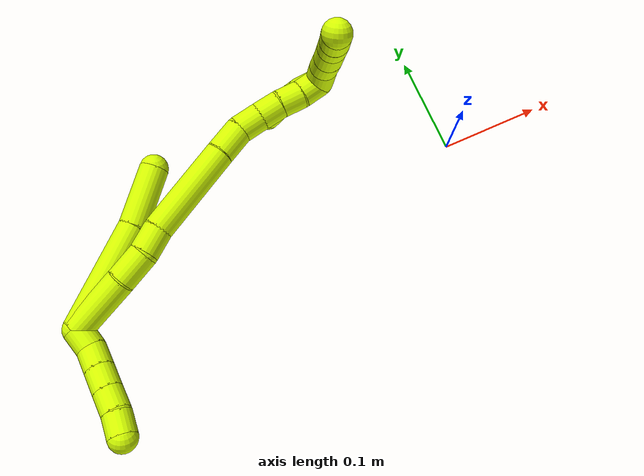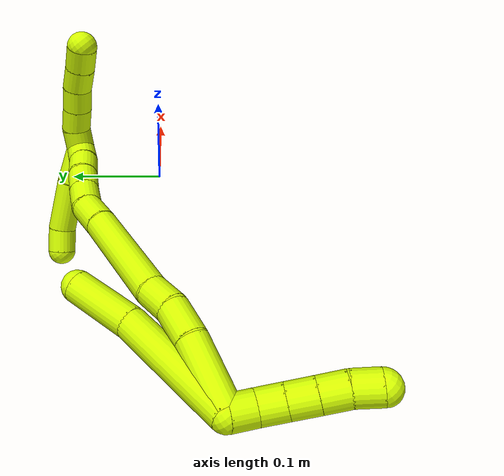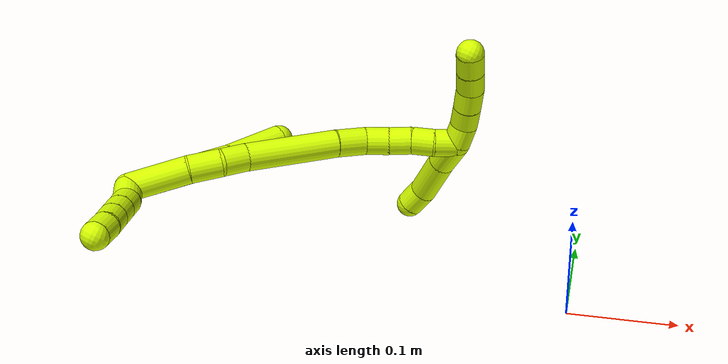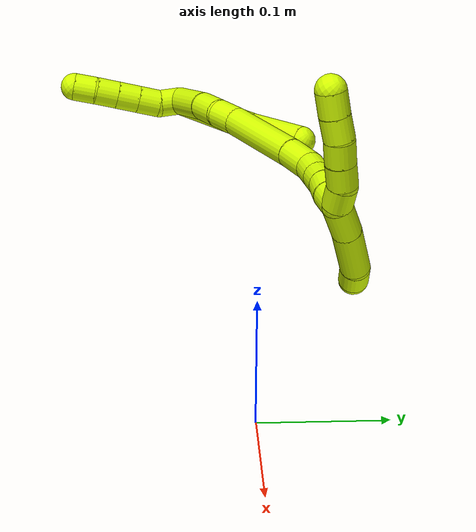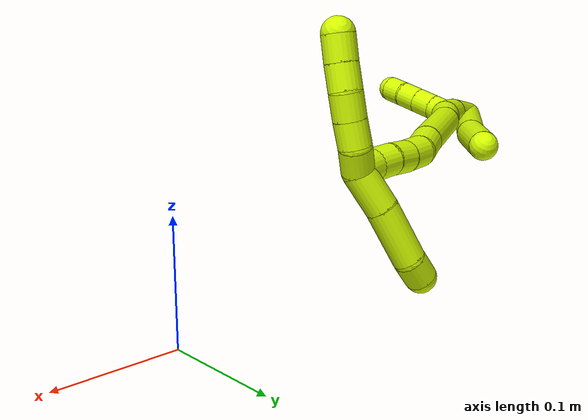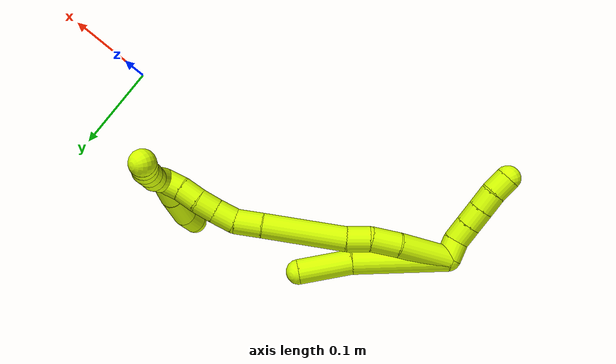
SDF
<sdf version="1.7">
 <world name="default">
  <model name="15">
   <static>0</static>
   <link name="15">
    <collision name="collision-cylinder-e_1_2_8">
     <pose>0.029057 0.022758 0.030909 -0.634671 0.647981 -0.219705</pose>
     <geometry><cylinder><radius>0.0125</radius><length>0.096283</length></cylinder></geometry>
     <surface>
      <friction><ode><mu>1.16</mu><mu2>1.16</mu2><slip1>0</slip1><slip2>0</slip2></ode></friction>
      <contact><ode><kp>1e+06</kp><kd>1</kd><max_vel>0</max_vel><min_depth>0.001</min_depth></ode></contact>
     </surface>
    </collision>
    <visual name="visual-cylinder-e_1_2_8">
     <pose>0.029057 0.022758 0.030909 -0.634671 0.647981 -0.219705</pose>
     <geometry><cylinder><radius>0.0125</radius><length>0.096283</length></cylinder></geometry>
     <material><ambient>0.835294 1 0 1</ambient></material>
    </visual>
    <collision name="collision-cylinder-e_2_8_6">
     <pose>0.071121 0.060581 0.079853 -0.695906 0.505529 -0.186823</pose>
     <geometry><cylinder><radius>0.0125</radius><length>0.053717</length></cylinder></geometry>
     <surface>
      <friction><ode><mu>1.16</mu><mu2>1.16</mu2><slip1>0</slip1><slip2>0</slip2></ode></friction>
      <contact><ode><kp>1e+06</kp><kd>1</kd><max_vel>0</max_vel><min_depth>0.001</min_depth></ode></contact>
     </surface>
    </collision>
    <visual name="visual-cylinder-e_2_8_6">
     <pose>0.071121 0.060581 0.079853 -0.695906 0.505529 -0.186823</pose>
     <geometry><cylinder><radius>0.0125</radius><length>0.053717</length></cylinder></geometry>
     <material><ambient>0.835294 1 0 1</ambient></material>
    </visual>
    <collision name="collision-cylinder-e_1_2_9">
     <pose>0.004084 -0.007409 -0.005332 2.19462 0.420654 0.789583</pose>
     <geometry><cylinder><radius>0.0125</radius><length>0.02</length></cylinder></geometry>
     <surface>
      <friction><ode><mu>1.16</mu><mu2>1.16</mu2><slip1>0</slip1><slip2>0</slip2></ode></friction>
      <contact><ode><kp>1e+06</kp><kd>1</kd><max_vel>0</max_vel><min_depth>0.001</min_depth></ode></contact>
     </surface>
    </collision>
    <visual name="visual-cylinder-e_1_2_9">
     <pose>0.004084 -0.007409 -0.005332 2.19462 0.420654 0.789583</pose>
     <geometry><cylinder><radius>0.0125</radius><length>0.02</length></cylinder></geometry>
     <material><ambient>0.835294 1 0 1</ambient></material>
    </visual>
    <collision name="collision-cylinder-e_2_9_10">
     <pose>0.009656 -0.023919 -0.01453 1.97244 0.149481 0.225358</pose>
     <geometry><cylinder><radius>0.0125</radius><length>0.02</length></cylinder></geometry>
     <surface>
      <friction><ode><mu>1.16</mu><mu2>1.16</mu2><slip1>0</slip1><slip2>0</slip2></ode></friction>
      <contact><ode><kp>1e+06</kp><kd>1</kd><max_vel>0</max_vel><min_depth>0.001</min_depth></ode></contact>
     </surface>
    </collision>
    <visual name="visual-cylinder-e_2_9_10">
     <pose>0.009656 -0.023919 -0.01453 1.97244 0.149481 0.225358</pose>
     <geometry><cylinder><radius>0.0125</radius><length>0.02</length></cylinder></geometry>
     <material><ambient>0.835294 1 0 1</ambient></material>
    </visual>
    <collision name="collision-cylinder-e_3_10_11">
     <pose>0.012642 -0.042112 -0.022282 1.97479 0.150226 0.22705</pose>
     <geometry><cylinder><radius>0.0125</radius><length>0.02</length></cylinder></geometry>
     <surface>
      <friction><ode><mu>1.16</mu><mu2>1.16</mu2><slip1>0</slip1><slip2>0</slip2></ode></friction>
      <contact><ode><kp>1e+06</kp><kd>1</kd><max_vel>0</max_vel><min_depth>0.001</min_depth></ode></contact>
     </surface>
    </collision>
    <visual name="visual-cylinder-e_3_10_11">
     <pose>0.012642 -0.042112 -0.022282 1.97479 0.150226 0.22705</pose>
     <geometry><cylinder><radius>0.0125</radius><length>0.02</length></cylinder></geometry>
     <material><ambient>0.835294 1 0 1</ambient></material>
    </visual>
    <collision name="collision-cylinder-e_4_11_12">
     <pose>0.015707 -0.060299 -0.030019 1.97119 0.15751 0.237082</pose>
     <geometry><cylinder><radius>0.0125</radius><length>0.02</length></cylinder></geometry>
     <surface>
      <friction><ode><mu>1.16</mu><mu2>1.16</mu2><slip1>0</slip1><slip2>0</slip2></ode></friction>
      <contact><ode><kp>1e+06</kp><kd>1</kd><max_vel>0</max_vel><min_depth>0.001</min_depth></ode></contact>
     </surface>
    </collision>
    <visual name="visual-cylinder-e_4_11_12">
     <pose>0.015707 -0.060299 -0.030019 1.97119 0.15751 0.237082</pose>
     <geometry><cylinder><radius>0.0125</radius><length>0.02</length></cylinder></geometry>
     <material><ambient>0.835294 1 0 1</ambient></material>
    </visual>
    <collision name="collision-cylinder-e_5_12_5">
     <pose>0.017765 -0.078118 -0.038731 2.07931 0.04895 0.083294</pose>
     <geometry><cylinder><radius>0.0125</radius><length>0.02</length></cylinder></geometry>
     <surface>
      <friction><ode><mu>1.16</mu><mu2>1.16</mu2><slip1>0</slip1><slip2>0</slip2></ode></friction>
      <contact><ode><kp>1e+06</kp><kd>1</kd><max_vel>0</max_vel><min_depth>0.001</min_depth></ode></contact>
     </surface>
    </collision>
    <visual name="visual-cylinder-e_5_12_5">
     <pose>0.017765 -0.078118 -0.038731 2.07931 0.04895 0.083294</pose>
     <geometry><cylinder><radius>0.0125</radius><length>0.02</length></cylinder></geometry>
     <material><ambient>0.835294 1 0 1</ambient></material>
    </visual>
    <collision name="collision-cylinder-e_1_2_13">
     <pose>0.019545 0.003297 0.018421 -0.177103 0.807101 -0.075782</pose>
     <geometry><cylinder><radius>0.0125</radius><length>0.054119</length></cylinder></geometry>
     <surface>
      <friction><ode><mu>1.16</mu><mu2>1.16</mu2><slip1>0</slip1><slip2>0</slip2></ode></friction>
      <contact><ode><kp>1e+06</kp><kd>1</kd><max_vel>0</max_vel><min_depth>0.001</min_depth></ode></contact>
     </surface>
    </collision>
    <visual name="visual-cylinder-e_1_2_13">
     <pose>0.019545 0.003297 0.018421 -0.177103 0.807101 -0.075782</pose>
     <geometry><cylinder><radius>0.0125</radius><length>0.054119</length></cylinder></geometry>
     <material><ambient>0.835294 1 0 1</ambient></material>
    </visual>
    <collision name="collision-cylinder-e_2_13_14">
     <pose>0.049733 0.010213 0.045702 -0.387808 0.83847 -0.174583</pose>
     <geometry><cylinder><radius>0.0125</radius><length>0.028628</length></cylinder></geometry>
     <surface>
      <friction><ode><mu>1.16</mu><mu2>1.16</mu2><slip1>0</slip1><slip2>0</slip2></ode></friction>
      <contact><ode><kp>1e+06</kp><kd>1</kd><max_vel>0</max_vel><min_depth>0.001</min_depth></ode></contact>
     </surface>
    </collision>
    <visual name="visual-cylinder-e_2_13_14">
     <pose>0.049733 0.010213 0.045702 -0.387808 0.83847 -0.174583</pose>
     <geometry><cylinder><radius>0.0125</radius><length>0.028628</length></cylinder></geometry>
     <material><ambient>0.835294 1 0 1</ambient></material>
    </visual>
    <collision name="collision-cylinder-e_3_14_15">
     <pose>0.06788 0.019645 0.061521 -0.695834 0.691253 -0.259711</pose>
     <geometry><cylinder><radius>0.0125</radius><length>0.023538</length></cylinder></geometry>
     <surface>
      <friction><ode><mu>1.16</mu><mu2>1.16</mu2><slip1>0</slip1><slip2>0</slip2></ode></friction>
      <contact><ode><kp>1e+06</kp><kd>1</kd><max_vel>0</max_vel><min_depth>0.001</min_depth></ode></contact>
     </surface>
    </collision>
    <visual name="visual-cylinder-e_3_14_15">
     <pose>0.06788 0.019645 0.061521 -0.695834 0.691253 -0.259711</pose>
     <geometry><cylinder><radius>0.0125</radius><length>0.023538</length></cylinder></geometry>
     <material><ambient>0.835294 1 0 1</ambient></material>
    </visual>
    <collision name="collision-cylinder-e_4_15_16">
     <pose>0.106257 0.040445 0.09209 -0.56563 0.834799 -0.256329</pose>
     <geometry><cylinder><radius>0.0125</radius><length>0.083312</length></cylinder></geometry>
     <surface>
      <friction><ode><mu>1.16</mu><mu2>1.16</mu2><slip1>0</slip1><slip2>0</slip2></ode></friction>
      <contact><ode><kp>1e+06</kp><kd>1</kd><max_vel>0</max_vel><min_depth>0.001</min_depth></ode></contact>
     </surface>
    </collision>
    <visual name="visual-cylinder-e_4_15_16">
     <pose>0.106257 0.040445 0.09209 -0.56563 0.834799 -0.256329</pose>
     <geometry><cylinder><radius>0.0125</radius><length>0.083312</length></cylinder></geometry>
     <material><ambient>0.835294 1 0 1</ambient></material>
    </visual>
    <collision name="collision-cylinder-e_5_16_17">
     <pose>0.147506 0.061137 0.122756 -0.679836 0.852201 -0.31833</pose>
     <geometry><cylinder><radius>0.0125</radius><length>0.027567</length></cylinder></geometry>
     <surface>
      <friction><ode><mu>1.16</mu><mu2>1.16</mu2><slip1>0</slip1><slip2>0</slip2></ode></friction>
      <contact><ode><kp>1e+06</kp><kd>1</kd><max_vel>0</max_vel><min_depth>0.001</min_depth></ode></contact>
     </surface>
    </collision>
    <visual name="visual-cylinder-e_5_16_17">
     <pose>0.147506 0.061137 0.122756 -0.679836 0.852201 -0.31833</pose>
     <geometry><cylinder><radius>0.0125</radius><length>0.027567</length></cylinder></geometry>
     <material><ambient>0.835294 1 0 1</ambient></material>
    </visual>
    <collision name="collision-cylinder-e_6_17_18">
     <pose>0.167698 0.068073 0.134555 -0.254031 1.10785 -0.157647</pose>
     <geometry><cylinder><radius>0.0125</radius><length>0.021944</length></cylinder></geometry>
     <surface>
      <friction><ode><mu>1.16</mu><mu2>1.16</mu2><slip1>0</slip1><slip2>0</slip2></ode></friction>
      <contact><ode><kp>1e+06</kp><kd>1</kd><max_vel>0</max_vel><min_depth>0.001</min_depth></ode></contact>
     </surface>
    </collision>
    <visual name="visual-cylinder-e_6_17_18">
     <pose>0.167698 0.068073 0.134555 -0.254031 1.10785 -0.157647</pose>
     <geometry><cylinder><radius>0.0125</radius><length>0.021944</length></cylinder></geometry>
     <material><ambient>0.835294 1 0 1</ambient></material>
    </visual>
    <collision name="collision-cylinder-e_7_18_19">
     <pose>0.186578 0.06959 0.14396 -0.061117 1.0949 -0.037264</pose>
     <geometry><cylinder><radius>0.0125</radius><length>0.020391</length></cylinder></geometry>
     <surface>
      <friction><ode><mu>1.16</mu><mu2>1.16</mu2><slip1>0</slip1><slip2>0</slip2></ode></friction>
      <contact><ode><kp>1e+06</kp><kd>1</kd><max_vel>0</max_vel><min_depth>0.001</min_depth></ode></contact>
     </surface>
    </collision>
    <visual name="visual-cylinder-e_7_18_19">
     <pose>0.186578 0.06959 0.14396 -0.061117 1.0949 -0.037264</pose>
     <geometry><cylinder><radius>0.0125</radius><length>0.020391</length></cylinder></geometry>
     <material><ambient>0.835294 1 0 1</ambient></material>
    </visual>
    <collision name="collision-cylinder-e_8_19_20">
     <pose>0.205216 0.07021 0.152088 -0.096439 1.22207 -0.067578</pose>
     <geometry><cylinder><radius>0.0125</radius><length>0.020378</length></cylinder></geometry>
     <surface>
      <friction><ode><mu>1.16</mu><mu2>1.16</mu2><slip1>0</slip1><slip2>0</slip2></ode></friction>
      <contact><ode><kp>1e+06</kp><kd>1</kd><max_vel>0</max_vel><min_depth>0.001</min_depth></ode></contact>
     </surface>
    </collision>
    <visual name="visual-cylinder-e_8_19_20">
     <pose>0.205216 0.07021 0.152088 -0.096439 1.22207 -0.067578</pose>
     <geometry><cylinder><radius>0.0125</radius><length>0.020378</length></cylinder></geometry>
     <material><ambient>0.835294 1 0 1</ambient></material>
    </visual>
    <collision name="collision-cylinder-e_9_20_1">
     <pose>0.223772 0.072046 0.159835 -0.337135 1.10295 -0.208611</pose>
     <geometry><cylinder><radius>0.0125</radius><length>0.020124</length></cylinder></geometry>
     <surface>
      <friction><ode><mu>1.16</mu><mu2>1.16</mu2><slip1>0</slip1><slip2>0</slip2></ode></friction>
      <contact><ode><kp>1e+06</kp><kd>1</kd><max_vel>0</max_vel><min_depth>0.001</min_depth></ode></contact>
     </surface>
    </collision>
    <visual name="visual-cylinder-e_9_20_1">
     <pose>0.223772 0.072046 0.159835 -0.337135 1.10295 -0.208611</pose>
     <geometry><cylinder><radius>0.0125</radius><length>0.020124</length></cylinder></geometry>
     <material><ambient>0.835294 1 0 1</ambient></material>
    </visual>
    <collision name="collision-cylinder-e_1_1_21">
     <pose>0.232505 0.068634 0.172823 0.513843 -0.024783 -0.006512</pose>
     <geometry><cylinder><radius>0.0125</radius><length>0.02</length></cylinder></geometry>
     <surface>
      <friction><ode><mu>1.16</mu><mu2>1.16</mu2><slip1>0</slip1><slip2>0</slip2></ode></friction>
      <contact><ode><kp>1e+06</kp><kd>1</kd><max_vel>0</max_vel><min_depth>0.001</min_depth></ode></contact>
     </surface>
    </collision>
    <visual name="visual-cylinder-e_1_1_21">
     <pose>0.232505 0.068634 0.172823 0.513843 -0.024783 -0.006512</pose>
     <geometry><cylinder><radius>0.0125</radius><length>0.02</length></cylinder></geometry>
     <material><ambient>0.835294 1 0 1</ambient></material>
    </visual>
    <collision name="collision-cylinder-e_2_21_22">
     <pose>0.230957 0.056526 0.188353 0.811771 -0.13046 -0.05613</pose>
     <geometry><cylinder><radius>0.0125</radius><length>0.02</length></cylinder></geometry>
     <surface>
      <friction><ode><mu>1.16</mu><mu2>1.16</mu2><slip1>0</slip1><slip2>0</slip2></ode></friction>
      <contact><ode><kp>1e+06</kp><kd>1</kd><max_vel>0</max_vel><min_depth>0.001</min_depth></ode></contact>
     </surface>
    </collision>
    <visual name="visual-cylinder-e_2_21_22">
     <pose>0.230957 0.056526 0.188353 0.811771 -0.13046 -0.05613</pose>
     <geometry><cylinder><radius>0.0125</radius><length>0.02</length></cylinder></geometry>
     <material><ambient>0.835294 1 0 1</ambient></material>
    </visual>
    <collision name="collision-cylinder-e_3_22_23">
     <pose>0.228069 0.04239 0.202197 0.779832 -0.159372 -0.06561</pose>
     <geometry><cylinder><radius>0.0125</radius><length>0.02</length></cylinder></geometry>
     <surface>
      <friction><ode><mu>1.16</mu><mu2>1.16</mu2><slip1>0</slip1><slip2>0</slip2></ode></friction>
      <contact><ode><kp>1e+06</kp><kd>1</kd><max_vel>0</max_vel><min_depth>0.001</min_depth></ode></contact>
     </surface>
    </collision>
    <visual name="visual-cylinder-e_3_22_23">
     <pose>0.228069 0.04239 0.202197 0.779832 -0.159372 -0.06561</pose>
     <geometry><cylinder><radius>0.0125</radius><length>0.02</length></cylinder></geometry>
     <material><ambient>0.835294 1 0 1</ambient></material>
    </visual>
    <collision name="collision-cylinder-e_4_23_24">
     <pose>0.224048 0.027687 0.215034 0.927586 -0.245825 -0.123423</pose>
     <geometry><cylinder><radius>0.0125</radius><length>0.02</length></cylinder></geometry>
     <surface>
      <friction><ode><mu>1.16</mu><mu2>1.16</mu2><slip1>0</slip1><slip2>0</slip2></ode></friction>
      <contact><ode><kp>1e+06</kp><kd>1</kd><max_vel>0</max_vel><min_depth>0.001</min_depth></ode></contact>
     </surface>
    </collision>
    <visual name="visual-cylinder-e_4_23_24">
     <pose>0.224048 0.027687 0.215034 0.927586 -0.245825 -0.123423</pose>
     <geometry><cylinder><radius>0.0125</radius><length>0.02</length></cylinder></geometry>
     <material><ambient>0.835294 1 0 1</ambient></material>
    </visual>
    <collision name="collision-cylinder-e_5_24_4">
     <pose>0.218933 0.012426 0.226899 0.892215 -0.271463 -0.130449</pose>
     <geometry><cylinder><radius>0.0125</radius><length>0.02</length></cylinder></geometry>
     <surface>
      <friction><ode><mu>1.16</mu><mu2>1.16</mu2><slip1>0</slip1><slip2>0</slip2></ode></friction>
      <contact><ode><kp>1e+06</kp><kd>1</kd><max_vel>0</max_vel><min_depth>0.001</min_depth></ode></contact>
     </surface>
    </collision>
    <visual name="visual-cylinder-e_5_24_4">
     <pose>0.218933 0.012426 0.226899 0.892215 -0.271463 -0.130449</pose>
     <geometry><cylinder><radius>0.0125</radius><length>0.02</length></cylinder></geometry>
     <material><ambient>0.835294 1 0 1</ambient></material>
    </visual>
    <collision name="collision-cylinder-e_1_1_25">
     <pose>0.229204 0.086481 0.154746 -2.1978 -0.218653 0.423697</pose>
     <geometry><cylinder><radius>0.0125</radius><length>0.032723</length></cylinder></geometry>
     <surface>
      <friction><ode><mu>1.16</mu><mu2>1.16</mu2><slip1>0</slip1><slip2>0</slip2></ode></friction>
      <contact><ode><kp>1e+06</kp><kd>1</kd><max_vel>0</max_vel><min_depth>0.001</min_depth></ode></contact>
     </surface>
    </collision>
    <visual name="visual-cylinder-e_1_1_25">
     <pose>0.229204 0.086481 0.154746 -2.1978 -0.218653 0.423697</pose>
     <geometry><cylinder><radius>0.0125</radius><length>0.032723</length></cylinder></geometry>
     <material><ambient>0.835294 1 0 1</ambient></material>
    </visual>
    <collision name="collision-cylinder-e_2_25_26">
     <pose>0.221919 0.116815 0.130749 -2.2698 -0.162919 0.347029</pose>
     <geometry><cylinder><radius>0.0125</radius><length>0.046071</length></cylinder></geometry>
     <surface>
      <friction><ode><mu>1.16</mu><mu2>1.16</mu2><slip1>0</slip1><slip2>0</slip2></ode></friction>
      <contact><ode><kp>1e+06</kp><kd>1</kd><max_vel>0</max_vel><min_depth>0.001</min_depth></ode></contact>
     </surface>
    </collision>
    <visual name="visual-cylinder-e_2_25_26">
     <pose>0.221919 0.116815 0.130749 -2.2698 -0.162919 0.347029</pose>
     <geometry><cylinder><radius>0.0125</radius><length>0.046071</length></cylinder></geometry>
     <material><ambient>0.835294 1 0 1</ambient></material>
    </visual>
    <collision name="collision-cylinder-e_3_26_3">
     <pose>0.214633 0.14013 0.108071 -2.50802 -0.341318 0.967982</pose>
     <geometry><cylinder><radius>0.0125</radius><length>0.021205</length></cylinder></geometry>
     <surface>
      <friction><ode><mu>1.16</mu><mu2>1.16</mu2><slip1>0</slip1><slip2>0</slip2></ode></friction>
      <contact><ode><kp>1e+06</kp><kd>1</kd><max_vel>0</max_vel><min_depth>0.001</min_depth></ode></contact>
     </surface>
    </collision>
    <visual name="visual-cylinder-e_3_26_3">
     <pose>0.214633 0.14013 0.108071 -2.50802 -0.341318 0.967982</pose>
     <geometry><cylinder><radius>0.0125</radius><length>0.021205</length></cylinder></geometry>
     <material><ambient>0.835294 1 0 1</ambient></material>
    </visual>
    <collision name="collision-sphere-3">
     <pose>0.211084 0.146045 0.100019 0 -0 0</pose>
     <geometry><sphere><radius>0.0125</radius></sphere></geometry>
     <surface>
      <friction><ode><mu>1.16</mu><mu2>1.16</mu2><slip1>0</slip1><slip2>0</slip2></ode></friction>
      <contact><ode><kp>1e+06</kp><kd>1</kd><max_vel>0</max_vel><min_depth>0.001</min_depth></ode></contact>
     </surface>
    </collision>
    <visual name="visual-sphere-3">
     <pose>0.211084 0.146045 0.100019 0 -0 0</pose>
     <geometry><sphere><radius>0.0125</radius></sphere></geometry>
     <material><ambient>0.835294 1 0 1</ambient></material>
    </visual>
    <collision name="collision-sphere-26">
     <pose>0.218182 0.134215 0.116123 0 -0 0</pose>
     <geometry><sphere><radius>0.0125</radius></sphere></geometry>
     <surface>
      <friction><ode><mu>1.16</mu><mu2>1.16</mu2><slip1>0</slip1><slip2>0</slip2></ode></friction>
      <contact><ode><kp>1e+06</kp><kd>1</kd><max_vel>0</max_vel><min_depth>0.001</min_depth></ode></contact>
     </surface>
    </collision>
    <visual name="visual-sphere-26">
     <pose>0.218182 0.134215 0.116123 0 -0 0</pose>
     <geometry><sphere><radius>0.0125</radius></sphere></geometry>
     <material><ambient>0.835294 1 0 1</ambient></material>
    </visual>
    <collision name="collision-sphere-25">
     <pose>0.225655 0.099415 0.145375 0 -0 0</pose>
     <geometry><sphere><radius>0.0125</radius></sphere></geometry>
     <surface>
      <friction><ode><mu>1.16</mu><mu2>1.16</mu2><slip1>0</slip1><slip2>0</slip2></ode></friction>
      <contact><ode><kp>1e+06</kp><kd>1</kd><max_vel>0</max_vel><min_depth>0.001</min_depth></ode></contact>
     </surface>
    </collision>
    <visual name="visual-sphere-25">
     <pose>0.225655 0.099415 0.145375 0 -0 0</pose>
     <geometry><sphere><radius>0.0125</radius></sphere></geometry>
     <material><ambient>0.835294 1 0 1</ambient></material>
    </visual>
    <collision name="collision-sphere-4">
     <pose>0.216252 0.004926 0.232946 0 -0 0</pose>
     <geometry><sphere><radius>0.0125</radius></sphere></geometry>
     <surface>
      <friction><ode><mu>1.16</mu><mu2>1.16</mu2><slip1>0</slip1><slip2>0</slip2></ode></friction>
      <contact><ode><kp>1e+06</kp><kd>1</kd><max_vel>0</max_vel><min_depth>0.001</min_depth></ode></contact>
     </surface>
    </collision>
    <visual name="visual-sphere-4">
     <pose>0.216252 0.004926 0.232946 0 -0 0</pose>
     <geometry><sphere><radius>0.0125</radius></sphere></geometry>
     <material><ambient>0.835294 1 0 1</ambient></material>
    </visual>
    <collision name="collision-sphere-24">
     <pose>0.221615 0.019926 0.220852 0 -0 0</pose>
     <geometry><sphere><radius>0.0125</radius></sphere></geometry>
     <surface>
      <friction><ode><mu>1.16</mu><mu2>1.16</mu2><slip1>0</slip1><slip2>0</slip2></ode></friction>
      <contact><ode><kp>1e+06</kp><kd>1</kd><max_vel>0</max_vel><min_depth>0.001</min_depth></ode></contact>
     </surface>
    </collision>
    <visual name="visual-sphere-24">
     <pose>0.221615 0.019926 0.220852 0 -0 0</pose>
     <geometry><sphere><radius>0.0125</radius></sphere></geometry>
     <material><ambient>0.835294 1 0 1</ambient></material>
    </visual>
    <collision name="collision-sphere-23">
     <pose>0.226482 0.035448 0.209217 0 -0 0</pose>
     <geometry><sphere><radius>0.0125</radius></sphere></geometry>
     <surface>
      <friction><ode><mu>1.16</mu><mu2>1.16</mu2><slip1>0</slip1><slip2>0</slip2></ode></friction>
      <contact><ode><kp>1e+06</kp><kd>1</kd><max_vel>0</max_vel><min_depth>0.001</min_depth></ode></contact>
     </surface>
    </collision>
    <visual name="visual-sphere-23">
     <pose>0.226482 0.035448 0.209217 0 -0 0</pose>
     <geometry><sphere><radius>0.0125</radius></sphere></geometry>
     <material><ambient>0.835294 1 0 1</ambient></material>
    </visual>
    <collision name="collision-sphere-22">
     <pose>0.229656 0.049333 0.195177 0 -0 0</pose>
     <geometry><sphere><radius>0.0125</radius></sphere></geometry>
     <surface>
      <friction><ode><mu>1.16</mu><mu2>1.16</mu2><slip1>0</slip1><slip2>0</slip2></ode></friction>
      <contact><ode><kp>1e+06</kp><kd>1</kd><max_vel>0</max_vel><min_depth>0.001</min_depth></ode></contact>
     </surface>
    </collision>
    <visual name="visual-sphere-22">
     <pose>0.229656 0.049333 0.195177 0 -0 0</pose>
     <geometry><sphere><radius>0.0125</radius></sphere></geometry>
     <material><ambient>0.835294 1 0 1</ambient></material>
    </visual>
    <collision name="collision-sphere-21">
     <pose>0.232257 0.06372 0.181529 0 -0 0</pose>
     <geometry><sphere><radius>0.0125</radius></sphere></geometry>
     <surface>
      <friction><ode><mu>1.16</mu><mu2>1.16</mu2><slip1>0</slip1><slip2>0</slip2></ode></friction>
      <contact><ode><kp>1e+06</kp><kd>1</kd><max_vel>0</max_vel><min_depth>0.001</min_depth></ode></contact>
     </surface>
    </collision>
    <visual name="visual-sphere-21">
     <pose>0.232257 0.06372 0.181529 0 -0 0</pose>
     <geometry><sphere><radius>0.0125</radius></sphere></geometry>
     <material><ambient>0.835294 1 0 1</ambient></material>
    </visual>
    <collision name="collision-sphere-1">
     <pose>0.232753 0.073547 0.164117 0 -0 0</pose>
     <geometry><sphere><radius>0.0125</radius></sphere></geometry>
     <surface>
      <friction><ode><mu>1.16</mu><mu2>1.16</mu2><slip1>0</slip1><slip2>0</slip2></ode></friction>
      <contact><ode><kp>1e+06</kp><kd>1</kd><max_vel>0</max_vel><min_depth>0.001</min_depth></ode></contact>
     </surface>
    </collision>
    <visual name="visual-sphere-1">
     <pose>0.232753 0.073547 0.164117 0 -0 0</pose>
     <geometry><sphere><radius>0.0125</radius></sphere></geometry>
     <material><ambient>0.835294 1 0 1</ambient></material>
    </visual>
    <collision name="collision-sphere-11">
     <pose>0.014139 -0.051204 -0.026169 0 -0 0</pose>
     <geometry><sphere><radius>0.0125</radius></sphere></geometry>
     <surface>
      <friction><ode><mu>1.16</mu><mu2>1.16</mu2><slip1>0</slip1><slip2>0</slip2></ode></friction>
      <contact><ode><kp>1e+06</kp><kd>1</kd><max_vel>0</max_vel><min_depth>0.001</min_depth></ode></contact>
     </surface>
    </collision>
    <visual name="visual-sphere-11">
     <pose>0.014139 -0.051204 -0.026169 0 -0 0</pose>
     <geometry><sphere><radius>0.0125</radius></sphere></geometry>
     <material><ambient>0.835294 1 0 1</ambient></material>
    </visual>
    <collision name="collision-sphere-10">
     <pose>0.011146 -0.033021 -0.018396 0 -0 0</pose>
     <geometry><sphere><radius>0.0125</radius></sphere></geometry>
     <surface>
      <friction><ode><mu>1.16</mu><mu2>1.16</mu2><slip1>0</slip1><slip2>0</slip2></ode></friction>
      <contact><ode><kp>1e+06</kp><kd>1</kd><max_vel>0</max_vel><min_depth>0.001</min_depth></ode></contact>
     </surface>
    </collision>
    <visual name="visual-sphere-10">
     <pose>0.011146 -0.033021 -0.018396 0 -0 0</pose>
     <geometry><sphere><radius>0.0125</radius></sphere></geometry>
     <material><ambient>0.835294 1 0 1</ambient></material>
    </visual>
    <collision name="collision-sphere-6">
     <pose>0.084128 0.075646 0.097887 0 -0 0</pose>
     <geometry><sphere><radius>0.0125</radius></sphere></geometry>
     <surface>
      <friction><ode><mu>1.16</mu><mu2>1.16</mu2><slip1>0</slip1><slip2>0</slip2></ode></friction>
      <contact><ode><kp>1e+06</kp><kd>1</kd><max_vel>0</max_vel><min_depth>0.001</min_depth></ode></contact>
     </surface>
    </collision>
    <visual name="visual-sphere-6">
     <pose>0.084128 0.075646 0.097887 0 -0 0</pose>
     <geometry><sphere><radius>0.0125</radius></sphere></geometry>
     <material><ambient>0.835294 1 0 1</ambient></material>
    </visual>
    <collision name="collision-sphere-9">
     <pose>0.008167 -0.014818 -0.010664 0 -0 0</pose>
     <geometry><sphere><radius>0.0125</radius></sphere></geometry>
     <surface>
      <friction><ode><mu>1.16</mu><mu2>1.16</mu2><slip1>0</slip1><slip2>0</slip2></ode></friction>
      <contact><ode><kp>1e+06</kp><kd>1</kd><max_vel>0</max_vel><min_depth>0.001</min_depth></ode></contact>
     </surface>
    </collision>
    <visual name="visual-sphere-9">
     <pose>0.008167 -0.014818 -0.010664 0 -0 0</pose>
     <geometry><sphere><radius>0.0125</radius></sphere></geometry>
     <material><ambient>0.835294 1 0 1</ambient></material>
    </visual>
    <collision name="collision-sphere-2">
     <geometry><sphere><radius>0.0125</radius></sphere></geometry>
     <surface>
      <friction><ode><mu>1.16</mu><mu2>1.16</mu2><slip1>0</slip1><slip2>0</slip2></ode></friction>
      <contact><ode><kp>1e+06</kp><kd>1</kd><max_vel>0</max_vel><min_depth>0.001</min_depth></ode></contact>
     </surface>
    </collision>
    <visual name="visual-sphere-2">
     <geometry><sphere><radius>0.0125</radius></sphere></geometry>
     <material><ambient>0.835294 1 0 1</ambient></material>
    </visual>
    <collision name="collision-sphere-19">
     <pose>0.19564 0.069875 0.148622 0 -0 0</pose>
     <geometry><sphere><radius>0.0125</radius></sphere></geometry>
     <surface>
      <friction><ode><mu>1.16</mu><mu2>1.16</mu2><slip1>0</slip1><slip2>0</slip2></ode></friction>
      <contact><ode><kp>1e+06</kp><kd>1</kd><max_vel>0</max_vel><min_depth>0.001</min_depth></ode></contact>
     </surface>
    </collision>
    <visual name="visual-sphere-19">
     <pose>0.19564 0.069875 0.148622 0 -0 0</pose>
     <geometry><sphere><radius>0.0125</radius></sphere></geometry>
     <material><ambient>0.835294 1 0 1</ambient></material>
    </visual>
    <collision name="collision-sphere-8">
     <pose>0.058114 0.045516 0.061818 0 -0 0</pose>
     <geometry><sphere><radius>0.0125</radius></sphere></geometry>
     <surface>
      <friction><ode><mu>1.16</mu><mu2>1.16</mu2><slip1>0</slip1><slip2>0</slip2></ode></friction>
      <contact><ode><kp>1e+06</kp><kd>1</kd><max_vel>0</max_vel><min_depth>0.001</min_depth></ode></contact>
     </surface>
    </collision>
    <visual name="visual-sphere-8">
     <pose>0.058114 0.045516 0.061818 0 -0 0</pose>
     <geometry><sphere><radius>0.0125</radius></sphere></geometry>
     <material><ambient>0.835294 1 0 1</ambient></material>
    </visual>
    <collision name="collision-sphere-12">
     <pose>0.017276 -0.069394 -0.033868 0 -0 0</pose>
     <geometry><sphere><radius>0.0125</radius></sphere></geometry>
     <surface>
      <friction><ode><mu>1.16</mu><mu2>1.16</mu2><slip1>0</slip1><slip2>0</slip2></ode></friction>
      <contact><ode><kp>1e+06</kp><kd>1</kd><max_vel>0</max_vel><min_depth>0.001</min_depth></ode></contact>
     </surface>
    </collision>
    <visual name="visual-sphere-12">
     <pose>0.017276 -0.069394 -0.033868 0 -0 0</pose>
     <geometry><sphere><radius>0.0125</radius></sphere></geometry>
     <material><ambient>0.835294 1 0 1</ambient></material>
    </visual>
    <collision name="collision-sphere-5">
     <pose>0.018255 -0.086842 -0.043594 0 -0 0</pose>
     <geometry><sphere><radius>0.0125</radius></sphere></geometry>
     <surface>
      <friction><ode><mu>1.16</mu><mu2>1.16</mu2><slip1>0</slip1><slip2>0</slip2></ode></friction>
      <contact><ode><kp>1e+06</kp><kd>1</kd><max_vel>0</max_vel><min_depth>0.001</min_depth></ode></contact>
     </surface>
    </collision>
    <visual name="visual-sphere-5">
     <pose>0.018255 -0.086842 -0.043594 0 -0 0</pose>
     <geometry><sphere><radius>0.0125</radius></sphere></geometry>
     <material><ambient>0.835294 1 0 1</ambient></material>
    </visual>
    <collision name="collision-sphere-13">
     <pose>0.039089 0.006594 0.036843 0 -0 0</pose>
     <geometry><sphere><radius>0.0125</radius></sphere></geometry>
     <surface>
      <friction><ode><mu>1.16</mu><mu2>1.16</mu2><slip1>0</slip1><slip2>0</slip2></ode></friction>
      <contact><ode><kp>1e+06</kp><kd>1</kd><max_vel>0</max_vel><min_depth>0.001</min_depth></ode></contact>
     </surface>
    </collision>
    <visual name="visual-sphere-13">
     <pose>0.039089 0.006594 0.036843 0 -0 0</pose>
     <geometry><sphere><radius>0.0125</radius></sphere></geometry>
     <material><ambient>0.835294 1 0 1</ambient></material>
    </visual>
    <collision name="collision-sphere-14">
     <pose>0.060377 0.013832 0.054562 0 -0 0</pose>
     <geometry><sphere><radius>0.0125</radius></sphere></geometry>
     <surface>
      <friction><ode><mu>1.16</mu><mu2>1.16</mu2><slip1>0</slip1><slip2>0</slip2></ode></friction>
      <contact><ode><kp>1e+06</kp><kd>1</kd><max_vel>0</max_vel><min_depth>0.001</min_depth></ode></contact>
     </surface>
    </collision>
    <visual name="visual-sphere-14">
     <pose>0.060377 0.013832 0.054562 0 -0 0</pose>
     <geometry><sphere><radius>0.0125</radius></sphere></geometry>
     <material><ambient>0.835294 1 0 1</ambient></material>
    </visual>
    <collision name="collision-sphere-15">
     <pose>0.075383 0.025457 0.068481 0 -0 0</pose>
     <geometry><sphere><radius>0.0125</radius></sphere></geometry>
     <surface>
      <friction><ode><mu>1.16</mu><mu2>1.16</mu2><slip1>0</slip1><slip2>0</slip2></ode></friction>
      <contact><ode><kp>1e+06</kp><kd>1</kd><max_vel>0</max_vel><min_depth>0.001</min_depth></ode></contact>
     </surface>
    </collision>
    <visual name="visual-sphere-15">
     <pose>0.075383 0.025457 0.068481 0 -0 0</pose>
     <geometry><sphere><radius>0.0125</radius></sphere></geometry>
     <material><ambient>0.835294 1 0 1</ambient></material>
    </visual>
    <collision name="collision-sphere-16">
     <pose>0.13713 0.055432 0.115699 0 -0 0</pose>
     <geometry><sphere><radius>0.0125</radius></sphere></geometry>
     <surface>
      <friction><ode><mu>1.16</mu><mu2>1.16</mu2><slip1>0</slip1><slip2>0</slip2></ode></friction>
      <contact><ode><kp>1e+06</kp><kd>1</kd><max_vel>0</max_vel><min_depth>0.001</min_depth></ode></contact>
     </surface>
    </collision>
    <visual name="visual-sphere-16">
     <pose>0.13713 0.055432 0.115699 0 -0 0</pose>
     <geometry><sphere><radius>0.0125</radius></sphere></geometry>
     <material><ambient>0.835294 1 0 1</ambient></material>
    </visual>
    <collision name="collision-sphere-17">
     <pose>0.157881 0.066842 0.129813 0 -0 0</pose>
     <geometry><sphere><radius>0.0125</radius></sphere></geometry>
     <surface>
      <friction><ode><mu>1.16</mu><mu2>1.16</mu2><slip1>0</slip1><slip2>0</slip2></ode></friction>
      <contact><ode><kp>1e+06</kp><kd>1</kd><max_vel>0</max_vel><min_depth>0.001</min_depth></ode></contact>
     </surface>
    </collision>
    <visual name="visual-sphere-17">
     <pose>0.157881 0.066842 0.129813 0 -0 0</pose>
     <geometry><sphere><radius>0.0125</radius></sphere></geometry>
     <material><ambient>0.835294 1 0 1</ambient></material>
    </visual>
    <collision name="collision-sphere-18">
     <pose>0.177515 0.069304 0.139298 0 -0 0</pose>
     <geometry><sphere><radius>0.0125</radius></sphere></geometry>
     <surface>
      <friction><ode><mu>1.16</mu><mu2>1.16</mu2><slip1>0</slip1><slip2>0</slip2></ode></friction>
      <contact><ode><kp>1e+06</kp><kd>1</kd><max_vel>0</max_vel><min_depth>0.001</min_depth></ode></contact>
     </surface>
    </collision>
    <visual name="visual-sphere-18">
     <pose>0.177515 0.069304 0.139298 0 -0 0</pose>
     <geometry><sphere><radius>0.0125</radius></sphere></geometry>
     <material><ambient>0.835294 1 0 1</ambient></material>
    </visual>
    <collision name="collision-sphere-20">
     <pose>0.214792 0.070545 0.155553 0 -0 0</pose>
     <geometry><sphere><radius>0.0125</radius></sphere></geometry>
     <surface>
      <friction><ode><mu>1.16</mu><mu2>1.16</mu2><slip1>0</slip1><slip2>0</slip2></ode></friction>
      <contact><ode><kp>1e+06</kp><kd>1</kd><max_vel>0</max_vel><min_depth>0.001</min_depth></ode></contact>
     </surface>
    </collision>
    <visual name="visual-sphere-20">
     <pose>0.214792 0.070545 0.155553 0 -0 0</pose>
     <geometry><sphere><radius>0.0125</radius></sphere></geometry>
     <material><ambient>0.835294 1 0 1</ambient></material>
    </visual>
    <inertial>
     <pose>0.114598 0.037768 0.087395 0 -0 0</pose>
     <mass>0.75</mass>
     <inertia>
      <ixx>0.000157</ixx>
      <ixy>0</ixy>
      <ixz>0</ixz>
      <iyy>0.000136</iyy>
      <iyz>0</iyz>
      <izz>-0.000164</izz>
     </inertia>
    </inertial>
   </link>
   <pose>-0.382579 -0.0488 0.122802 -0.714423 0.301368 -0.177278</pose>
  </model>
 </world>
</sdf>
